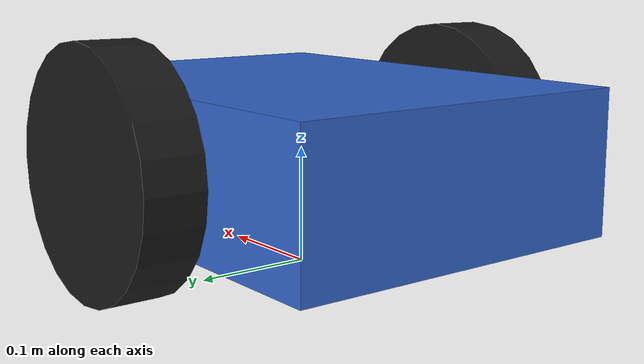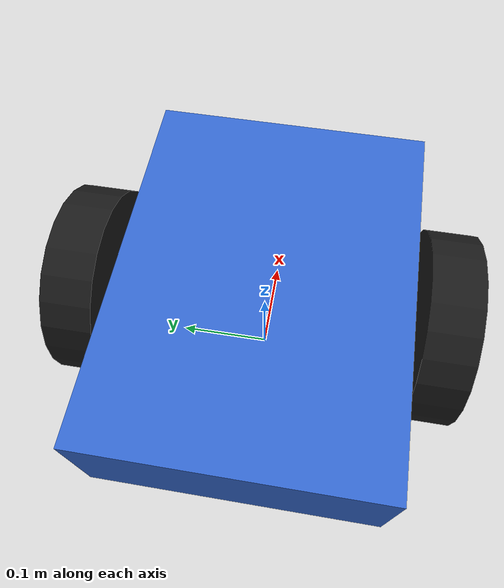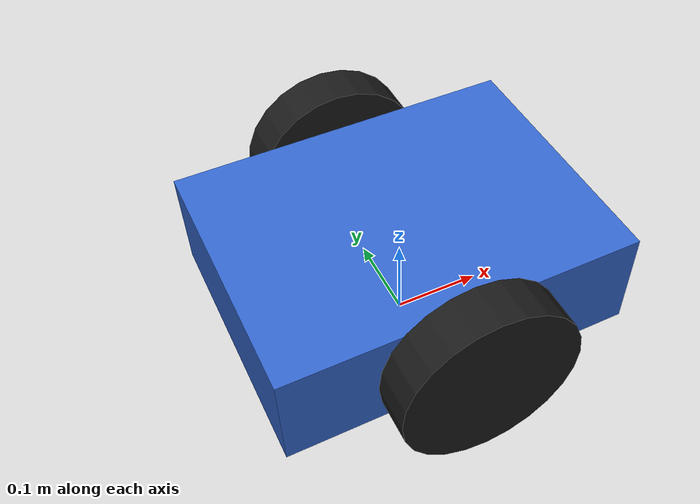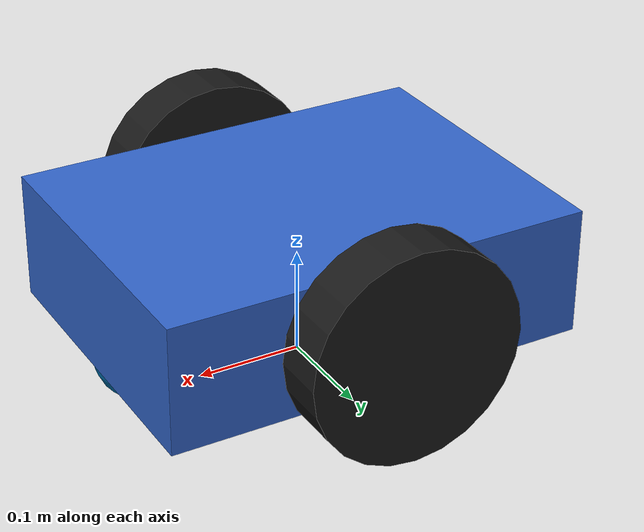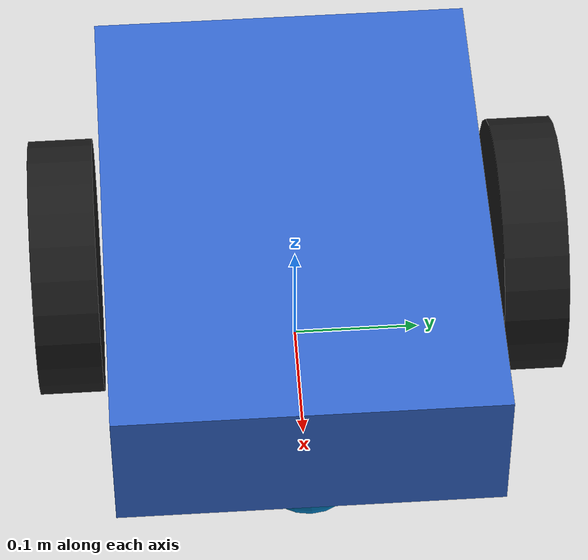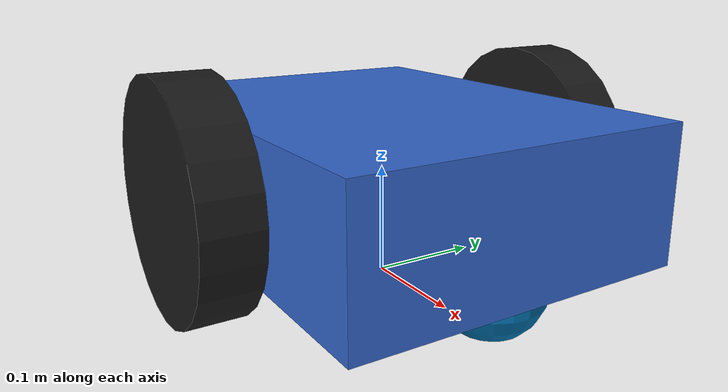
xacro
<?xml version="1.0"?>
<robot xmlns:xacro="http://www.ros.org/wiki/xacro" name="ugv">

  <!-- ================= Parameters ================= -->
  <xacro:property name="base_x" value="0.40"/>
  <xacro:property name="base_y" value="0.30"/>
  <xacro:property name="base_z" value="0.12"/>
  <xacro:property name="base_mass" value="8.0"/>

  <xacro:property name="wheel_radius" value="0.10"/>
  <xacro:property name="wheel_width" value="0.05"/>
  <xacro:property name="wheel_mass" value="0.6"/>
  <xacro:property name="wheel_track" value="0.36"/>   <!-- L: distance between wheels -->

  <xacro:property name="caster_radius" value="0.045"/>
  <xacro:property name="update_rate" value="100"/>

  <!-- ================= Macros ================= -->
  <xacro:macro name="box_inertia" params="m x y z">
    <inertial>
      <mass value="${m}"/>
      <inertia ixx="${m*(y*y+z*z)/12.0}" ixy="0" ixz="0"
               iyy="${m*(x*x+z*z)/12.0}" iyz="0"
               izz="${m*(x*x+y*y)/12.0}"/>
    </inertial>
  </xacro:macro>

  <xacro:macro name="cyl_inertia" params="m r l">
    <inertial>
      <mass value="${m}"/>
      <inertia ixx="${m*(3*r*r+l*l)/12.0}" ixy="0" ixz="0"
               iyy="${m*(3*r*r+l*l)/12.0}" iyz="0"
               izz="${m*r*r/2.0}"/>
    </inertial>
  </xacro:macro>

  <xacro:macro name="wheel" params="prefix reflect">
    <link name="${prefix}_wheel">
      <visual>
        <origin xyz="0 0 0" rpy="1.5708 0 0"/>
        <geometry><cylinder radius="${wheel_radius}" length="${wheel_width}"/></geometry>
        <material name="wheel_mat"><color rgba="0.1 0.1 0.1 1"/></material>
      </visual>
      <collision>
        <origin xyz="0 0 0" rpy="1.5708 0 0"/>
        <geometry><cylinder radius="${wheel_radius}" length="${wheel_width}"/></geometry>
      </collision>
      <xacro:cyl_inertia m="${wheel_mass}" r="${wheel_radius}" l="${wheel_width}"/>
    </link>

    <joint name="${prefix}_wheel_joint" type="continuous">
      <parent link="base_link"/>
      <child link="${prefix}_wheel"/>
      <origin xyz="0 ${reflect*wheel_track/2.0} 0" rpy="0 0 0"/>
      <axis xyz="0 1 0"/>
      <dynamics damping="0.01" friction="0.01"/>
    </joint>
  </xacro:macro>

  <!-- ================= Base ================= -->
  <link name="base_footprint"/>
  <joint name="base_footprint_joint" type="fixed">
    <parent link="base_footprint"/>
    <child link="base_link"/>
    <origin xyz="0 0 ${wheel_radius}" rpy="0 0 0"/>
  </joint>

  <link name="base_link">
    <visual>
      <geometry><box size="${base_x} ${base_y} ${base_z}"/></geometry>
      <material name="base_mat"><color rgba="0.2 0.4 0.8 1"/></material>
    </visual>
    <collision>
      <geometry><box size="${base_x} ${base_y} ${base_z}"/></geometry>
    </collision>
    <xacro:box_inertia m="${base_mass}" x="${base_x}" y="${base_y}" z="${base_z}"/>
  </link>

  <!-- ================= Wheels ================= -->
  <xacro:wheel prefix="left"  reflect="1"/>
  <xacro:wheel prefix="right" reflect="-1"/>

  <!-- ================= Passive caster ================= -->
  <link name="caster">
    <visual><geometry><sphere radius="${caster_radius}"/></geometry></visual>
    <collision>
      <geometry><sphere radius="${caster_radius}"/></geometry>
      <surface><friction><ode><mu>0.0</mu><mu2>0.0</mu2></ode></friction></surface>
    </collision>
    <xacro:cyl_inertia m="0.2" r="${caster_radius}" l="${caster_radius}"/>
  </link>
  <joint name="caster_joint" type="fixed">
    <parent link="base_link"/>
    <child link="caster"/>
    <origin xyz="${base_x/2.0 - caster_radius} 0 ${-(wheel_radius - caster_radius)}" rpy="0 0 0"/>
  </joint>

  <!-- ================= IMU ================= -->
  <link name="imu_link">
    <xacro:box_inertia m="0.05" x="0.03" y="0.03" z="0.02"/>
  </link>
  <joint name="imu_joint" type="fixed">
    <parent link="base_link"/>
    <child link="imu_link"/>
    <origin xyz="0 0 ${base_z/2.0}" rpy="0 0 0"/>
  </joint>

  <!-- ================= GNSS ================= -->
  <link name="gps_link">
    <xacro:box_inertia m="0.05" x="0.03" y="0.03" z="0.02"/>
  </link>
  <joint name="gps_joint" type="fixed">
    <parent link="base_link"/>
    <child link="gps_link"/>
    <origin xyz="${-base_x/4.0} 0 ${base_z/2.0 + 0.05}" rpy="0 0 0"/>
  </joint>

  <!-- ================= Gazebo (Harmonic) plugins & sensors ================= -->
  <xacro:include filename="$(find ugv_description)/urdf/ugv.gazebo.xacro"/>
  <xacro:ugv_gazebo update_rate="${update_rate}"
                    wheel_track="${wheel_track}"
                    wheel_radius="${wheel_radius}"/>

</robot>
